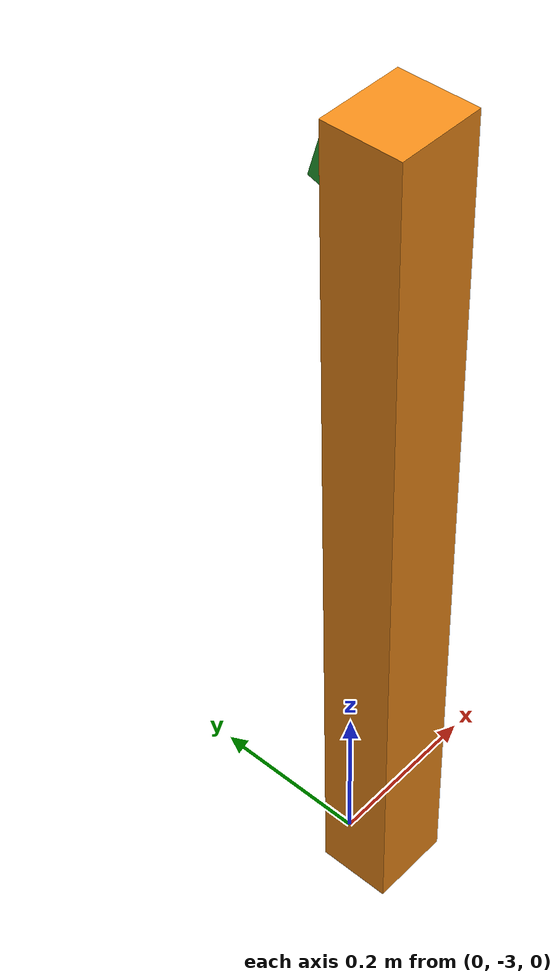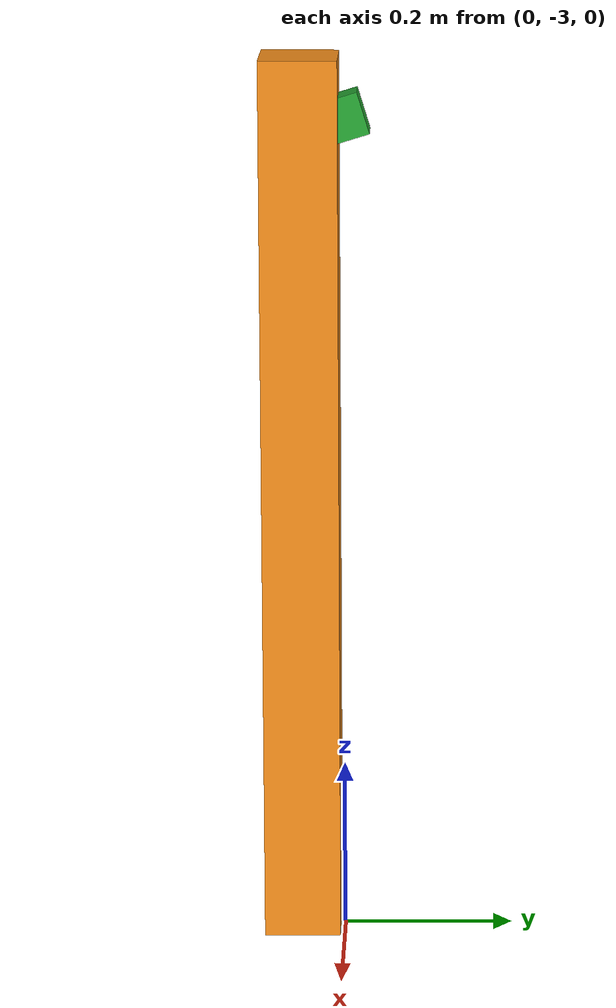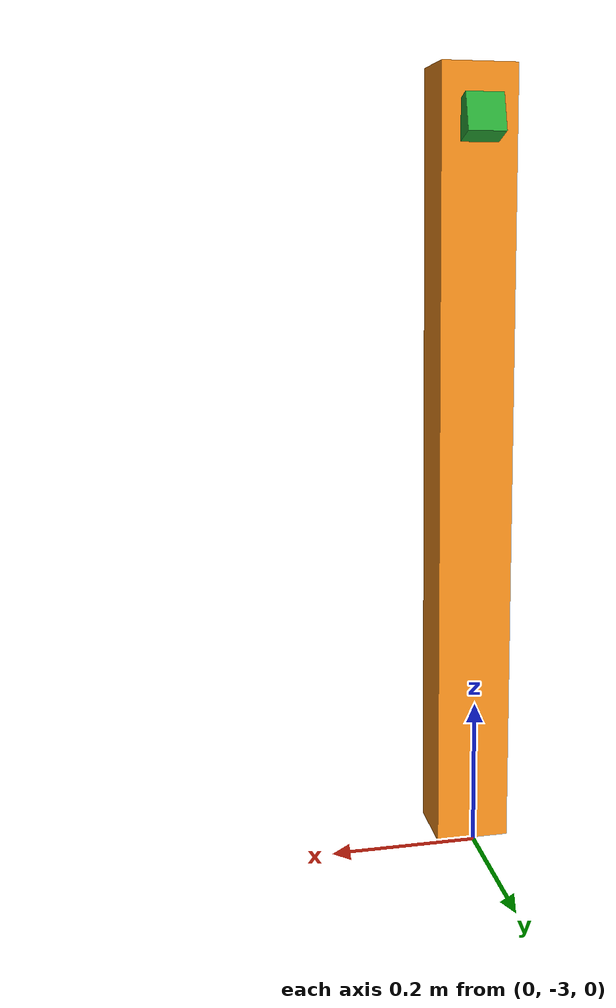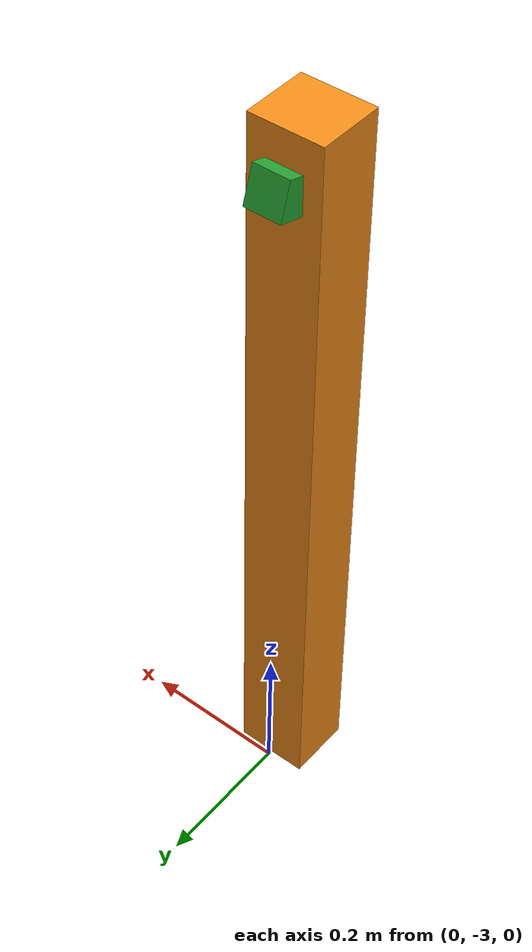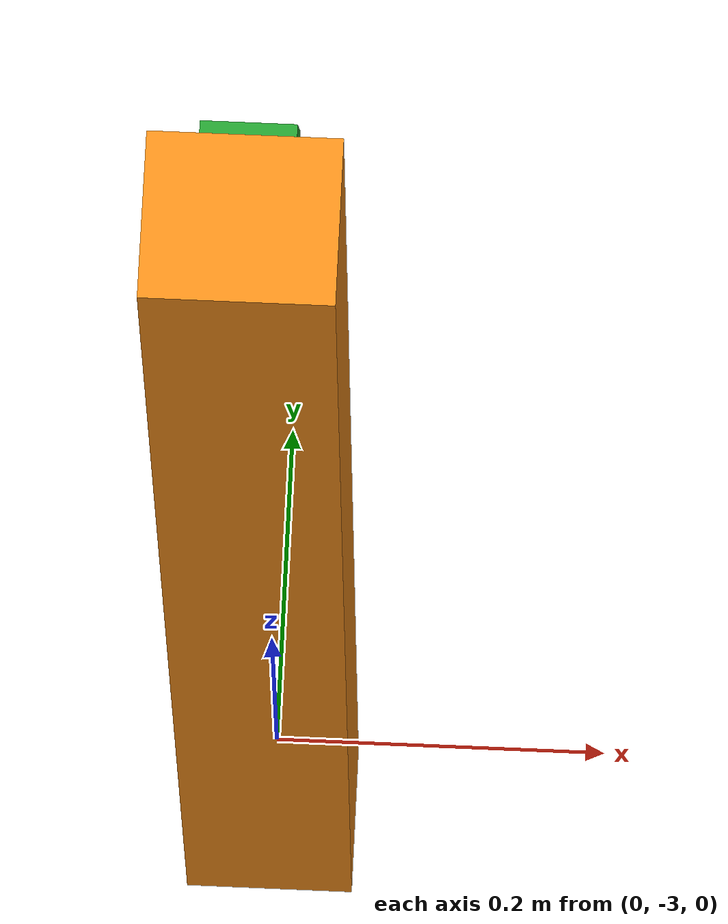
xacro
<?xml version='1.0'?>

<!-- choose a name space and start xacro -->
<robot name="fixed_camera_x" xmlns:xacro="http://www.ros.org/wiki/xacro">

  <xacro:include filename="$(find simulation)/models/fixed_camera_x/camera_parameter_x.xacro"   />
  <xacro:include filename="$(find simulation)/models/fixed_camera_x/fixed_camera_x.gazebo" />

  <link name='base_link2'>
    <pose>${x_camera} ${y_camera} 0 0 0 0</pose>
  </link>

  <link name="stand">
    <collision>
      <origin xyz="${x_stand} ${y_stand} ${z_stand}" rpy="0 0 0"/>
      <geometry>
        <box size="${stand_xSize} ${stand_ySize} ${stand_zSize}"/>
      </geometry>
    </collision>

    <visual>
      <origin xyz="${x_stand} ${y_stand} ${z_stand}" rpy="0 0 0"/>
      <geometry>
        <box size="${stand_xSize} ${stand_ySize} ${stand_zSize}"/>
      </geometry>
      <material name="orange"/>
    </visual>

    <inertial>
      <mass value="${standMass}" />
      <origin xyz="${x_stand} ${y_stand} ${z_stand}" rpy="0 0 0"/>
      <inertia ixx="0.36467" ixy="0" ixz="-1.071125" iyy="4.56733" iyz="0" izz="4.2206" />
    </inertial>
  </link>

  <link name="camera">
    <collision>
      <origin xyz="0 0 0" rpy="0 0 0"/>
      <geometry>
        <box size="${cameraSize} ${cameraSize} ${cameraSize}"/>
      </geometry>
    </collision>

    <visual>
      <origin xyz="0 0 0" rpy="0 0 0"/>
      <geometry>
        <box size="${cameraSize} ${cameraSize} ${cameraSize}"/>
      </geometry>
      <material name="green"/>
    </visual>

    <inertial>
      <mass value="${cameraMass}" />
      <origin xyz="0 0 0" rpy="0 0 0"/>
      <inertia ixx="0.100041666" ixy="0" ixz="-0.3" iyy="0.500041666" iyz="0" izz="0.400041666" />
    </inertial>
  </link>

  <joint type="fixed" name="base_link_to_stand">
    <child link="stand"/>
    <parent link="base_link2"/>
  </joint>

  <joint type="continuous" name="camera_stand_joint">
    <origin xyz="${x_camera} ${y_camera} ${z_camera-cameraSize/2}" rpy="0 -0.3 1.5708"/>
    <child link="camera"/>
    <parent link="stand"/>
  </joint>

</robot>

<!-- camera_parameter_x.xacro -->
<robot xmlns:xacro="http://www.ros.org/wiki/xacro">

  <xacro:property name="cameraSize" value="0.05"/>
  <xacro:property name="cameraMass" value="0.1"/>
  <xacro:property name="x_camera" value="0" />
  <xacro:property name="y_camera" value="-3" />
  <xacro:property name="z_camera" value="1" />

  <xacro:property name="x_stand" value="0" />
  <xacro:property name="y_stand" value="-3.05" />
  <xacro:property name="z_stand" value="0.5225" />
  <xacro:property name="stand_xSize" value="0.1" />
  <xacro:property name="stand_ySize" value="0.09" />
  <xacro:property name="stand_zSize" value="1.045" />
  <xacro:property name="standMass" value="0.5" />

</robot>
